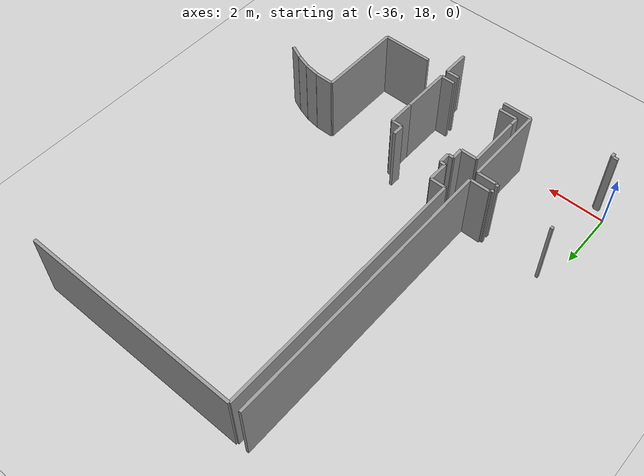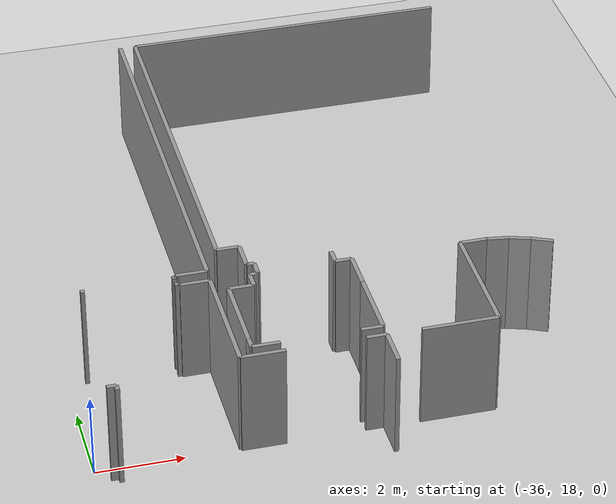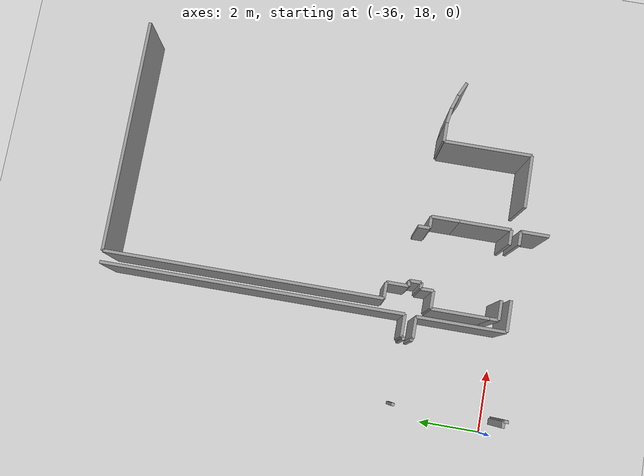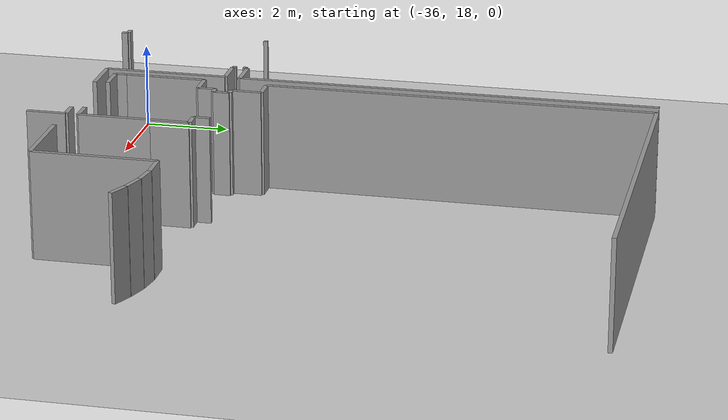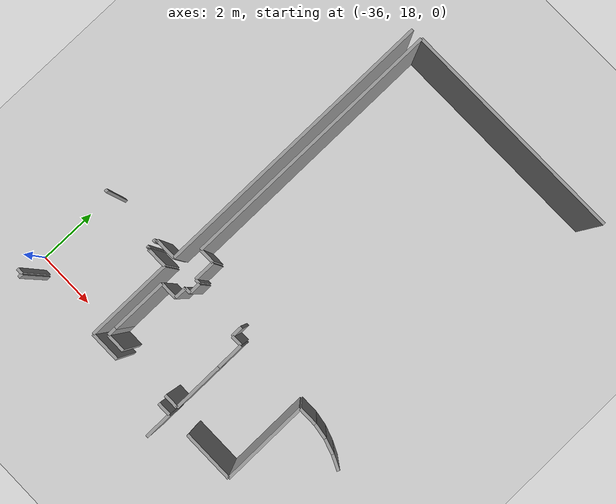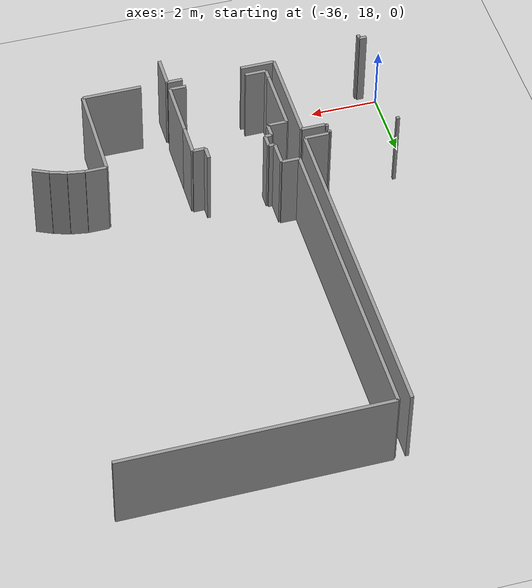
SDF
<sdf version="1.6">
 <world name="default">
  <model name="ground_plane">
   <static>1</static>
   <link name="link">
    <collision name="collision">
     <geometry><plane><normal>0 0 1</normal><size>100 100</size></plane></geometry>
     <surface><friction><ode><mu>100</mu><mu2>50</mu2></ode></friction></surface>
    </collision>
    <visual name="visual">
     <cast_shadows>0</cast_shadows>
     <geometry><plane><normal>0 0 1</normal><size>100 100</size></plane></geometry>
     <material>
      <script><uri>file://media/materials/scripts/gazebo.material</uri><name>Gazebo/Grey</name></script>
     </material>
    </visual>
   </link>
  </model>
  <model name="0510032267_A_40_1_101">
   <static>1</static>
   <link name="Wall_14">
    <collision name="Wall_14_Collision">
     <geometry><box><size>9.69824436551 0.1 2.5</size></box></geometry>
     <pose>4.84912218276 0 1.25 0 0 0</pose>
    </collision>
    <visual name="Wall_14_Visual">
     <pose>4.84912218276 0 1.25 0 0 0</pose>
     <geometry><box><size>9.69824436551 0.1 2.5</size></box></geometry>
     <material>
      <script><uri>file://media/materials/scripts/gazebo.material</uri><name>Gazebo/Grey</name></script>
      <ambient>1 1 1 1</ambient>
     </material>
    </visual>
    <pose>15.0356782036 -2.79325704192 0 0 0 -1.57079632679</pose>
   </link>
   <link name="Wall_15">
    <collision name="Wall_15_Collision">
     <geometry><box><size>0.707082901785 0.1 2.5</size></box></geometry>
     <pose>0.353541450892 0 1.25 0 0 0</pose>
    </collision>
    <visual name="Wall_15_Visual">
     <pose>0.353541450892 0 1.25 0 0 0</pose>
     <geometry><box><size>0.707082901785 0.1 2.5</size></box></geometry>
     <material>
      <script><uri>file://media/materials/scripts/gazebo.material</uri><name>Gazebo/Grey</name></script>
      <ambient>1 1 1 1</ambient>
     </material>
    </visual>
    <pose>15.0356782036 -12.4915014074 0 0 0 3.14159265359</pose>
   </link>
   <link name="Wall_16">
    <collision name="Wall_16_Collision">
     <geometry><box><size>0.0668450047338 0.1 2.5</size></box></geometry>
     <pose>0.0334225023669 0 1.25 0 0 0</pose>
    </collision>
    <visual name="Wall_16_Visual">
     <pose>0.0334225023669 0 1.25 0 0 0</pose>
     <geometry><box><size>0.0668450047338 0.1 2.5</size></box></geometry>
     <material>
      <script><uri>file://media/materials/scripts/gazebo.material</uri><name>Gazebo/Grey</name></script>
      <ambient>1 1 1 1</ambient>
     </material>
    </visual>
    <pose>14.3285953018 -12.4915014074 0 0 0 -1.57079632679</pose>
   </link>
   <link name="Wall_17">
    <collision name="Wall_17_Collision">
     <geometry><box><size>0.0955654820529 0.1 2.5</size></box></geometry>
     <pose>0.0477827410264 0 1.25 0 0 0</pose>
    </collision>
    <visual name="Wall_17_Visual">
     <pose>0.0477827410264 0 1.25 0 0 0</pose>
     <geometry><box><size>0.0955654820529 0.1 2.5</size></box></geometry>
     <material>
      <script><uri>file://media/materials/scripts/gazebo.material</uri><name>Gazebo/Grey</name></script>
      <ambient>1 1 1 1</ambient>
     </material>
    </visual>
    <pose>14.3285953018 -12.5583464122 0 0 0 3.14159265359</pose>
   </link>
   <link name="Wall_18">
    <collision name="Wall_18_Collision">
     <geometry><box><size>0.0939134191982 0.1 2.5</size></box></geometry>
     <pose>0.0469567095991 0 1.25 0 0 0</pose>
    </collision>
    <visual name="Wall_18_Visual">
     <pose>0.0469567095991 0 1.25 0 0 0</pose>
     <geometry><box><size>0.0939134191982 0.1 2.5</size></box></geometry>
     <material>
      <script><uri>file://media/materials/scripts/gazebo.material</uri><name>Gazebo/Grey</name></script>
      <ambient>1 1 1 1</ambient>
     </material>
    </visual>
    <pose>12.2940163554 -12.5583464122 0 0 0 3.14159265359</pose>
   </link>
   <link name="Wall_59">
    <collision name="Wall_59_Collision">
     <geometry><box><size>1.85450409521 0.1 2.5</size></box></geometry>
     <pose>0.927252047605 0 1.25 0 0 0</pose>
    </collision>
    <visual name="Wall_59_Visual">
     <pose>0.927252047605 0 1.25 0 0 0</pose>
     <geometry><box><size>1.85450409521 0.1 2.5</size></box></geometry>
     <material>
      <script><uri>file://media/materials/scripts/gazebo.material</uri><name>Gazebo/Grey</name></script>
      <ambient>1 1 1 1</ambient>
     </material>
    </visual>
    <pose>15.341691077 -15.1112918496 0 0 0 1.57079632679</pose>
   </link>
   <link name="Wall_60">
    <collision name="Wall_60_Collision">
     <geometry><box><size>0.563353433431 0.1 2.5</size></box></geometry>
     <pose>0.281676716716 0 1.25 0 0 0</pose>
    </collision>
    <visual name="Wall_60_Visual">
     <pose>0.281676716716 0 1.25 0 0 0</pose>
     <geometry><box><size>0.563353433431 0.1 2.5</size></box></geometry>
     <material>
      <script><uri>file://media/materials/scripts/gazebo.material</uri><name>Gazebo/Grey</name></script>
      <ambient>1 1 1 1</ambient>
     </material>
    </visual>
    <pose>15.341691077 -13.2567877544 0 0 0 0.0</pose>
   </link>
   <link name="Wall_61">
    <collision name="Wall_61_Collision">
     <geometry><box><size>0.402976254774 0.1 2.5</size></box></geometry>
     <pose>0.201488127387 0 1.25 0 0 0</pose>
    </collision>
    <visual name="Wall_61_Visual">
     <pose>0.201488127387 0 1.25 0 0 0</pose>
     <geometry><box><size>0.402976254774 0.1 2.5</size></box></geometry>
     <material>
      <script><uri>file://media/materials/scripts/gazebo.material</uri><name>Gazebo/Grey</name></script>
      <ambient>1 1 1 1</ambient>
     </material>
    </visual>
    <pose>15.9050445104 -13.2567877544 0 0 0 1.57079632679</pose>
   </link>
   <link name="Wall_62">
    <collision name="Wall_62_Collision">
     <geometry><box><size>0.191003882348 0.1 2.5</size></box></geometry>
     <pose>0.0955019411739 0 1.25 0 0 0</pose>
    </collision>
    <visual name="Wall_62_Visual">
     <pose>0.0955019411739 0 1.25 0 0 0</pose>
     <geometry><box><size>0.191003882348 0.1 2.5</size></box></geometry>
     <material>
      <script><uri>file://media/materials/scripts/gazebo.material</uri><name>Gazebo/Grey</name></script>
      <ambient>1 1 1 1</ambient>
     </material>
    </visual>
    <pose>15.9050445104 -12.8538114996 0 0 0 0.0</pose>
   </link>
   <link name="Wall_63">
    <collision name="Wall_63_Collision">
     <geometry><box><size>0.382261928212 0.1 2.5</size></box></geometry>
     <pose>0.191130964106 0 1.25 0 0 0</pose>
    </collision>
    <visual name="Wall_63_Visual">
     <pose>0.191130964106 0 1.25 0 0 0</pose>
     <geometry><box><size>0.382261928212 0.1 2.5</size></box></geometry>
     <material>
      <script><uri>file://media/materials/scripts/gazebo.material</uri><name>Gazebo/Grey</name></script>
      <ambient>1 1 1 1</ambient>
     </material>
    </visual>
    <pose>16.0960483927 -12.8538114996 0 0 0 1.57079632679</pose>
   </link>
   <link name="Wall_64">
    <collision name="Wall_64_Collision">
     <geometry><box><size>0.170289555786 0.1 2.5</size></box></geometry>
     <pose>0.0851447778929 0 1.25 0 0 0</pose>
    </collision>
    <visual name="Wall_64_Visual">
     <pose>0.0851447778929 0 1.25 0 0 0</pose>
     <geometry><box><size>0.170289555786 0.1 2.5</size></box></geometry>
     <material>
      <script><uri>file://media/materials/scripts/gazebo.material</uri><name>Gazebo/Grey</name></script>
      <ambient>1 1 1 1</ambient>
     </material>
    </visual>
    <pose>16.0960483927 -12.4715495714 0 0 0 3.14159265359</pose>
   </link>
   <link name="Wall_65">
    <collision name="Wall_65_Collision">
     <geometry><box><size>0.702762122011 0.1 2.5</size></box></geometry>
     <pose>0.351381061006 0 1.25 0 0 0</pose>
    </collision>
    <visual name="Wall_65_Visual">
     <pose>0.351381061006 0 1.25 0 0 0</pose>
     <geometry><box><size>0.702762122011 0.1 2.5</size></box></geometry>
     <material>
      <script><uri>file://media/materials/scripts/gazebo.material</uri><name>Gazebo/Grey</name></script>
      <ambient>1 1 1 1</ambient>
     </material>
    </visual>
    <pose>15.9257588369 -12.4715495714 0 0 0 1.57079632679</pose>
   </link>
   <link name="Wall_66">
    <collision name="Wall_66_Collision">
     <geometry><box><size>0.51785816405 0.1 2.5</size></box></geometry>
     <pose>0.258929082025 0 1.25 0 0 0</pose>
    </collision>
    <visual name="Wall_66_Visual">
     <pose>0.258929082025 0 1.25 0 0 0</pose>
     <geometry><box><size>0.51785816405 0.1 2.5</size></box></geometry>
     <material>
      <script><uri>file://media/materials/scripts/gazebo.material</uri><name>Gazebo/Grey</name></script>
      <ambient>1 1 1 1</ambient>
     </material>
    </visual>
    <pose>15.9257588369 -11.7687874494 0 0 0 3.14159265359</pose>
   </link>
   <link name="Wall_67">
    <collision name="Wall_67_Collision">
     <geometry><box><size>8.96434721278 0.1 2.5</size></box></geometry>
     <pose>4.48217360639 0 1.25 0 0 0</pose>
    </collision>
    <visual name="Wall_67_Visual">
     <pose>4.48217360639 0 1.25 0 0 0</pose>
     <geometry><box><size>8.96434721278 0.1 2.5</size></box></geometry>
     <material>
      <script><uri>file://media/materials/scripts/gazebo.material</uri><name>Gazebo/Grey</name></script>
      <ambient>1 1 1 1</ambient>
     </material>
    </visual>
    <pose>15.4079006729 -11.7687874494 0 0 0 1.57079632679</pose>
   </link>
   <link name="Wall_68">
    <collision name="Wall_68_Collision">
     <geometry><box><size>7.61143481659 0.1 2.5</size></box></geometry>
     <pose>3.80571740829 0 1.25 0 0 0</pose>
    </collision>
    <visual name="Wall_68_Visual">
     <pose>3.80571740829 0 1.25 0 0 0</pose>
     <geometry><box><size>7.61143481659 0.1 2.5</size></box></geometry>
     <material>
      <script><uri>file://media/materials/scripts/gazebo.material</uri><name>Gazebo/Grey</name></script>
      <ambient>1 1 1 1</ambient>
     </material>
    </visual>
    <pose>15.4079006729 -2.80444023663 0 0 0 0.0</pose>
   </link>
   <link name="Wall_71">
    <collision name="Wall_71_Collision">
     <geometry><box><size>0.372857878116 0.1 2.5</size></box></geometry>
     <pose>0.186428939058 0 1.25 0 0 0</pose>
    </collision>
    <visual name="Wall_71_Visual">
     <pose>0.186428939058 0 1.25 0 0 0</pose>
     <geometry><box><size>0.372857878116 0.1 2.5</size></box></geometry>
     <material>
      <script><uri>file://media/materials/scripts/gazebo.material</uri><name>Gazebo/Grey</name></script>
      <ambient>1 1 1 1</ambient>
     </material>
    </visual>
    <pose>17.8504120626 -12.4664663011 0 0 0 -1.57079632679</pose>
   </link>
   <link name="Wall_72">
    <collision name="Wall_72_Collision">
     <geometry><box><size>0.373493286906 0.1 2.5</size></box></geometry>
     <pose>0.186746643453 0 1.25 0 0 0</pose>
    </collision>
    <visual name="Wall_72_Visual">
     <pose>0.186746643453 0 1.25 0 0 0</pose>
     <geometry><box><size>0.373493286906 0.1 2.5</size></box></geometry>
     <material>
      <script><uri>file://media/materials/scripts/gazebo.material</uri><name>Gazebo/Grey</name></script>
      <ambient>1 1 1 1</ambient>
     </material>
    </visual>
    <pose>17.8504120626 -12.8393241792 0 0 0 0.0</pose>
   </link>
   <link name="Wall_73">
    <collision name="Wall_73_Collision">
     <geometry><box><size>0.895545148972 0.1 2.5</size></box></geometry>
     <pose>0.447772574486 0 1.25 0 0 0</pose>
    </collision>
    <visual name="Wall_73_Visual">
     <pose>0.447772574486 0 1.25 0 0 0</pose>
     <geometry><box><size>0.895545148972 0.1 2.5</size></box></geometry>
     <material>
      <script><uri>file://media/materials/scripts/gazebo.material</uri><name>Gazebo/Grey</name></script>
      <ambient>1 1 1 1</ambient>
     </material>
    </visual>
    <pose>18.2239053495 -12.8393241792 0 0 0 -1.57079632679</pose>
   </link>
   <link name="Wall_74">
    <collision name="Wall_74_Collision">
     <geometry><box><size>1.6594335966 0.1 2.5</size></box></geometry>
     <pose>0.829716798302 0 1.25 0 0 0</pose>
    </collision>
    <visual name="Wall_74_Visual">
     <pose>0.829716798302 0 1.25 0 0 0</pose>
     <geometry><box><size>1.6594335966 0.1 2.5</size></box></geometry>
     <material>
      <script><uri>file://media/materials/scripts/gazebo.material</uri><name>Gazebo/Grey</name></script>
      <ambient>1 1 1 1</ambient>
     </material>
    </visual>
    <pose>18.2239053495 -13.7348693282 0 0 0 -1.57079632679</pose>
   </link>
   <link name="Wall_75">
    <collision name="Wall_75_Collision">
     <geometry><box><size>0.485325233989 0.1 2.5</size></box></geometry>
     <pose>0.242662616995 0 1.25 0 0 0</pose>
    </collision>
    <visual name="Wall_75_Visual">
     <pose>0.242662616995 0 1.25 0 0 0</pose>
     <geometry><box><size>0.485325233989 0.1 2.5</size></box></geometry>
     <material>
      <script><uri>file://media/materials/scripts/gazebo.material</uri><name>Gazebo/Grey</name></script>
      <ambient>1 1 1 1</ambient>
     </material>
    </visual>
    <pose>18.2239053495 -15.3943029248 0 0 0 3.14159265359</pose>
   </link>
   <link name="Wall_76">
    <collision name="Wall_76_Collision">
     <geometry><box><size>0.623208941472 0.1 2.5</size></box></geometry>
     <pose>0.311604470736 0 1.25 0 0 0</pose>
    </collision>
    <visual name="Wall_76_Visual">
     <pose>0.311604470736 0 1.25 0 0 0</pose>
     <geometry><box><size>0.623208941472 0.1 2.5</size></box></geometry>
     <material>
      <script><uri>file://media/materials/scripts/gazebo.material</uri><name>Gazebo/Grey</name></script>
      <ambient>1 1 1 1</ambient>
     </material>
    </visual>
    <pose>15.9673145718 -15.3943029248 0 0 0 3.14159265359</pose>
   </link>
   <link name="Wall_77">
    <collision name="Wall_77_Collision">
     <geometry><box><size>0.283021375058 0.1 2.5</size></box></geometry>
     <pose>0.141510687529 0 1.25 0 0 0</pose>
    </collision>
    <visual name="Wall_77_Visual">
     <pose>0.141510687529 0 1.25 0 0 0</pose>
     <geometry><box><size>0.283021375058 0.1 2.5</size></box></geometry>
     <material>
      <script><uri>file://media/materials/scripts/gazebo.material</uri><name>Gazebo/Grey</name></script>
      <ambient>1 1 1 1</ambient>
     </material>
    </visual>
    <pose>15.3441056304 -15.3943029248 0 0 0 1.57932777674</pose>
   </link>
   <link name="Wall_81">
    <collision name="Wall_81_Collision">
     <geometry><box><size>0.148304411643 0.1 2.5</size></box></geometry>
     <pose>0.0741522058216 0 1.25 0 0 0</pose>
    </collision>
    <visual name="Wall_81_Visual">
     <pose>0.0741522058216 0 1.25 0 0 0</pose>
     <geometry><box><size>0.148304411643 0.1 2.5</size></box></geometry>
     <material>
      <script><uri>file://media/materials/scripts/gazebo.material</uri><name>Gazebo/Grey</name></script>
      <ambient>1 1 1 1</ambient>
     </material>
    </visual>
    <pose>12.3172723171 -16.1247688701 0 0 0 1.57079632679</pose>
   </link>
   <link name="Wall_82">
    <collision name="Wall_82_Collision">
     <geometry><box><size>0.208287001442 0.1 2.5</size></box></geometry>
     <pose>0.104143500721 0 1.25 0 0 0</pose>
    </collision>
    <visual name="Wall_82_Visual">
     <pose>0.104143500721 0 1.25 0 0 0</pose>
     <geometry><box><size>0.208287001442 0.1 2.5</size></box></geometry>
     <material>
      <script><uri>file://media/materials/scripts/gazebo.material</uri><name>Gazebo/Grey</name></script>
      <ambient>1 1 1 1</ambient>
     </material>
    </visual>
    <pose>12.3172723171 -15.9764644584 0 0 0 3.14159265359</pose>
   </link>
   <link name="Wall_92">
    <collision name="Wall_92_Collision">
     <geometry><box><size>0.0940405009563 0.1 2.5</size></box></geometry>
     <pose>0.0470202504781 0 1.25 0 0 0</pose>
    </collision>
    <visual name="Wall_92_Visual">
     <pose>0.0470202504781 0 1.25 0 0 0</pose>
     <geometry><box><size>0.0940405009563 0.1 2.5</size></box></geometry>
     <material>
      <script><uri>file://media/materials/scripts/gazebo.material</uri><name>Gazebo/Grey</name></script>
      <ambient>1 1 1 1</ambient>
     </material>
    </visual>
    <pose>14.2410359705 -12.8151786452 0 0 0 0.0</pose>
   </link>
   <link name="Wall_93">
    <collision name="Wall_93_Collision">
     <geometry><box><size>0.033676665883 0.1 2.5</size></box></geometry>
     <pose>0.0168383329415 0 1.25 0 0 0</pose>
    </collision>
    <visual name="Wall_93_Visual">
     <pose>0.0168383329415 0 1.25 0 0 0</pose>
     <geometry><box><size>0.033676665883 0.1 2.5</size></box></geometry>
     <material>
      <script><uri>file://media/materials/scripts/gazebo.material</uri><name>Gazebo/Grey</name></script>
      <ambient>1 1 1 1</ambient>
     </material>
    </visual>
    <pose>14.3350764714 -12.8151786452 0 0 0 -1.57079632679</pose>
   </link>
   <link name="Wall_94">
    <collision name="Wall_94_Collision">
     <geometry><box><size>0.682683204239 0.1 2.5</size></box></geometry>
     <pose>0.34134160212 0 1.25 0 0 0</pose>
    </collision>
    <visual name="Wall_94_Visual">
     <pose>0.34134160212 0 1.25 0 0 0</pose>
     <geometry><box><size>0.682683204239 0.1 2.5</size></box></geometry>
     <material>
      <script><uri>file://media/materials/scripts/gazebo.material</uri><name>Gazebo/Grey</name></script>
      <ambient>1 1 1 1</ambient>
     </material>
    </visual>
    <pose>14.3350764714 -12.8488553111 0 0 0 0.0</pose>
   </link>
   <link name="Wall_95">
    <collision name="Wall_95_Collision">
     <geometry><box><size>2.84370849986 0.1 2.5</size></box></geometry>
     <pose>1.42185424993 0 1.25 0 0 0</pose>
    </collision>
    <visual name="Wall_95_Visual">
     <pose>1.42185424993 0 1.25 0 0 0</pose>
     <geometry><box><size>2.84370849986 0.1 2.5</size></box></geometry>
     <material>
      <script><uri>file://media/materials/scripts/gazebo.material</uri><name>Gazebo/Grey</name></script>
      <ambient>1 1 1 1</ambient>
     </material>
    </visual>
    <pose>15.0177596757 -12.8488553111 0 0 0 -1.57079632679</pose>
   </link>
   <link name="Wall_96">
    <collision name="Wall_96_Collision">
     <geometry><box><size>0.999752190572 0.1 2.5</size></box></geometry>
     <pose>0.499876095286 0 1.25 0 0 0</pose>
    </collision>
    <visual name="Wall_96_Visual">
     <pose>0.499876095286 0 1.25 0 0 0</pose>
     <geometry><box><size>0.999752190572 0.1 2.5</size></box></geometry>
     <material>
      <script><uri>file://media/materials/scripts/gazebo.material</uri><name>Gazebo/Grey</name></script>
      <ambient>1 1 1 1</ambient>
     </material>
    </visual>
    <pose>15.0177596757 -15.6925638109 0 0 0 0.0</pose>
   </link>
   <link name="Wall_97">
    <collision name="Wall_97_Collision">
     <geometry><box><size>0.448725687671 0.1 2.5</size></box></geometry>
     <pose>0.224362843836 0 1.25 0 0 0</pose>
    </collision>
    <visual name="Wall_97_Visual">
     <pose>0.224362843836 0 1.25 0 0 0</pose>
     <geometry><box><size>0.448725687671 0.1 2.5</size></box></geometry>
     <material>
      <script><uri>file://media/materials/scripts/gazebo.material</uri><name>Gazebo/Grey</name></script>
      <ambient>1 1 1 1</ambient>
     </material>
    </visual>
    <pose>17.7744171713 -15.6925638109 0 0 0 0.0</pose>
   </link>
   <link name="Wall_98">
    <collision name="Wall_98_Collision">
     <geometry><box><size>0.904313790277 0.1 2.5</size></box></geometry>
     <pose>0.452156895138 0 1.25 0 0 0</pose>
    </collision>
    <visual name="Wall_98_Visual">
     <pose>0.452156895138 0 1.25 0 0 0</pose>
     <geometry><box><size>0.904313790277 0.1 2.5</size></box></geometry>
     <material>
      <script><uri>file://media/materials/scripts/gazebo.material</uri><name>Gazebo/Grey</name></script>
      <ambient>1 1 1 1</ambient>
     </material>
    </visual>
    <pose>18.223142859 -15.6925638109 0 0 0 -1.57079632679</pose>
   </link>
   <link name="Wall_169">
    <collision name="Wall_169_Collision">
     <geometry><box><size>1.71166419916 0.1 2.5</size></box></geometry>
     <pose>0.855832099581 0 1.25 0 0 0</pose>
    </collision>
    <visual name="Wall_169_Visual">
     <pose>0.855832099581 0 1.25 0 0 0</pose>
     <geometry><box><size>1.71166419916 0.1 2.5</size></box></geometry>
     <material>
      <script><uri>file://media/materials/scripts/gazebo.material</uri><name>Gazebo/Grey</name></script>
      <ambient>1 1 1 1</ambient>
     </material>
    </visual>
    <pose>18.9997394824 -15.7089573577 0 0 0 0.0</pose>
   </link>
   <link name="Wall_170">
    <collision name="Wall_170_Collision">
     <geometry><box><size>2.84561472623 0.1 2.5</size></box></geometry>
     <pose>1.42280736312 0 1.25 0 0 0</pose>
    </collision>
    <visual name="Wall_170_Visual">
     <pose>1.42280736312 0 1.25 0 0 0</pose>
     <geometry><box><size>2.84561472623 0.1 2.5</size></box></geometry>
     <material>
      <script><uri>file://media/materials/scripts/gazebo.material</uri><name>Gazebo/Grey</name></script>
      <ambient>1 1 1 1</ambient>
     </material>
    </visual>
    <pose>20.7114036816 -15.7089573577 0 0 0 1.57079632679</pose>
   </link>
   <link name="Wall_171">
    <collision name="Wall_171_Collision">
     <geometry><box><size>0.617363180602 0.1 2.5</size></box></geometry>
     <pose>0.308681590301 0 1.25 0 0 0</pose>
    </collision>
    <visual name="Wall_171_Visual">
     <pose>0.308681590301 0 1.25 0 0 0</pose>
     <geometry><box><size>0.617363180602 0.1 2.5</size></box></geometry>
     <material>
      <script><uri>file://media/materials/scripts/gazebo.material</uri><name>Gazebo/Grey</name></script>
      <ambient>1 1 1 1</ambient>
     </material>
    </visual>
    <pose>20.7114036816 -12.8633426315 0 0 0 0.0</pose>
   </link>
   <link name="Wall_172">
    <collision name="Wall_172_Collision">
     <geometry><box><size>0.500328160263 0.1 2.5</size></box></geometry>
     <pose>0.250164080131 0 1.25 0 0 0</pose>
    </collision>
    <visual name="Wall_172_Visual">
     <pose>0.250164080131 0 1.25 0 0 0</pose>
     <geometry><box><size>0.500328160263 0.1 2.5</size></box></geometry>
     <material>
      <script><uri>file://media/materials/scripts/gazebo.material</uri><name>Gazebo/Grey</name></script>
      <ambient>1 1 1 1</ambient>
     </material>
    </visual>
    <pose>21.3287668622 -12.8633426315 0 0 0 -0.161223526369</pose>
   </link>
   <link name="Wall_173">
    <collision name="Wall_173_Collision">
     <geometry><box><size>0.496921280897 0.1 2.5</size></box></geometry>
     <pose>0.248460640449 0 1.25 0 0 0</pose>
    </collision>
    <visual name="Wall_173_Visual">
     <pose>0.248460640449 0 1.25 0 0 0</pose>
     <geometry><box><size>0.496921280897 0.1 2.5</size></box></geometry>
     <material>
      <script><uri>file://media/materials/scripts/gazebo.material</uri><name>Gazebo/Grey</name></script>
      <ambient>1 1 1 1</ambient>
     </material>
    </visual>
    <pose>21.8226065739 -12.9436583026 0 0 0 -0.314876420863</pose>
   </link>
   <link name="Wall_174">
    <collision name="Wall_174_Collision">
     <geometry><box><size>0.496538108411 0.1 2.5</size></box></geometry>
     <pose>0.248269054205 0 1.25 0 0 0</pose>
    </collision>
    <visual name="Wall_174_Visual">
     <pose>0.248269054205 0 1.25 0 0 0</pose>
     <geometry><box><size>0.496538108411 0.1 2.5</size></box></geometry>
     <material>
      <script><uri>file://media/materials/scripts/gazebo.material</uri><name>Gazebo/Grey</name></script>
      <ambient>1 1 1 1</ambient>
     </material>
    </visual>
    <pose>22.2950965504 -13.0975543116 0 0 0 -0.433998679257</pose>
   </link>
   <pose>-47.8 33.6752466975 0 0 0 0</pose>
  </model>
 </world>
</sdf>
